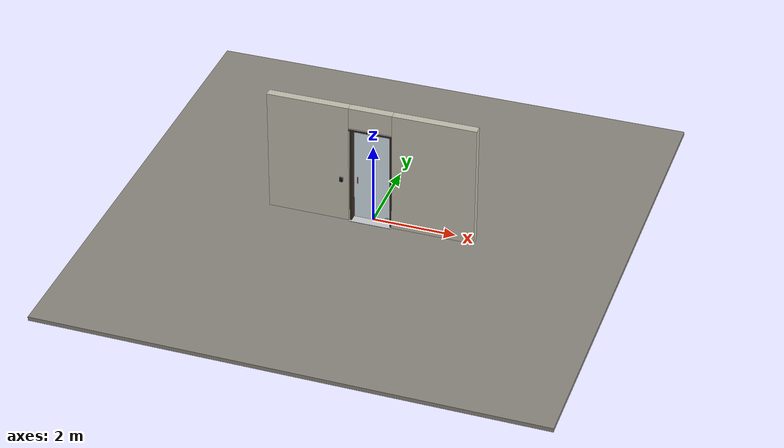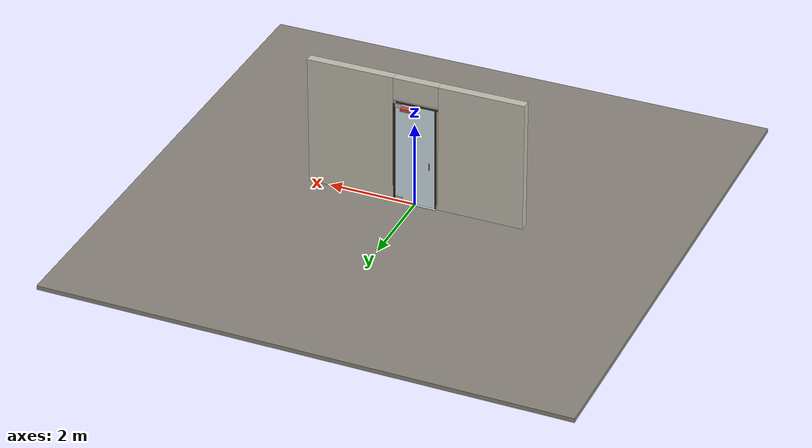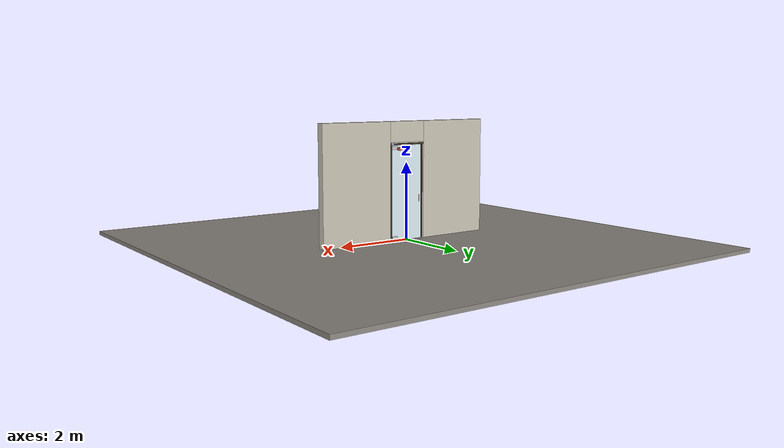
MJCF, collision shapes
<?xml version="1.0" ?>
<mujoco model="db0152_swing_single_simple">
  <compiler angle="radian" meshdir="../../hardware" texturedir="../../textures" autolimits="true" inertiafromgeom="false"/>
  <option timestep="0.002" integrator="implicitfast" cone="elliptic" impratio="10" noslip_iterations="3">
    <flag multiccd="enable"/>
  </option>
  <size memory="16M"/>
  <default>
    <geom condim="4" solref="0.005 1" solimp="0.95 0.99 0.001"/>
    <joint solreflimit="0.005 1" solimplimit="0.95 0.99 0.001"/>
    <tendon solreflimit="0.005 1"/>
    <equality solref="0.002 1"/>
  </default>
  <visual>
    <headlight ambient="0.4 0.4 0.4" diffuse="0.7 0.7 0.7" specular="0.2 0.2 0.2"/>
    <quality shadowsize="4096"/>
    <map znear="0.01" zfar="60"/>
  </visual>
  <asset>
    <mesh name="closer_body_fdc4667657" file="closer_body_fdc4667657.obj"/>
    <mesh name="pull_1e5d69a91a" file="pull_1e5d69a91a.obj"/>
    <material name="mat_floor" rgba="0.55 0.53 0.5 1" specular="0.2" shininess="0.15" reflectance="0"/>
    <material name="mat_wall" rgba="0.78 0.76 0.7 1" specular="0.2" shininess="0.1" reflectance="0"/>
    <material name="mat_leaf" rgba="0.85 0.92 0.95 0.25" specular="0.2" shininess="0.95" reflectance="0.1"/>
    <material name="mat_glass_leaf" rgba="0.85 0.92 0.95 0.25" specular="0.2" shininess="0.95" reflectance="0.1"/>
    <material name="mat_patch" rgba="0.75 0.76 0.77 1" specular="0.8" shininess="0.65" reflectance="0.4"/>
    <material name="mat_hinge" rgba="0.65 0.66 0.68 1" specular="0.74" shininess="0.5" reflectance="0.36"/>
    <material name="mat_op_stainless" rgba="0.75 0.76 0.77 1" specular="0.8" shininess="0.65" reflectance="0.4"/>
    <material name="mat_frame" rgba="0.22 0.17 0.13 1" specular="0.8" shininess="0.6" reflectance="0.4"/>
    <material name="mat_threshold" rgba="0.8 0.81 0.83 1" specular="0.8" shininess="0.6" reflectance="0.4"/>
    <material name="mat_closer" rgba="0.22 0.17 0.13 1" specular="0.8" shininess="0.6" reflectance="0.4"/>
    <material name="mat_sign" rgba="0.75 0.76 0.77 1" specular="0.8" shininess="0.65" reflectance="0.4"/>
    <material name="mat_wallreader" rgba="0.05 0.05 0.05 1" specular="0.38" shininess="0.3" reflectance="0.12"/>
    <texture name="skybox" type="skybox" builtin="gradient" rgb1="0.6 0.7 0.85" rgb2="0.9 0.92 0.95" width="256" height="256"/>
  </asset>
  <worldbody>
    <light name="sun" pos="1.5 -2.5 4" dir="-0.3 0.5 -0.8" directional="true" diffuse="0.8 0.8 0.8" specular="0.3 0.3 0.3" castshadow="true"/>
    <light name="fill" pos="-1.5 2.5 3" dir="0.3 -0.5 -0.7" directional="true" diffuse="0.35 0.35 0.4" castshadow="false"/>
    <camera name="robot_view" pos="0 -3.010813 2.043887" xyaxes="1 0 0 0 0.26963 0.962964" fovy="52"/>
    <camera name="far_view" pos="0 2.834812 2.043887" xyaxes="-1 0 0 0 -0.26963 0.962964" fovy="52"/>
    <camera name="iso" pos="-2.221337 -2.543163 2.511538" xyaxes="0.741536 -0.670913 0 0.242917 0.268487 0.932151" fovy="46"/>
    <camera name="detail_handle" pos="-0.1735 -0.865 1.347" xyaxes="0.97561 0.219512 0 -0.070934 0.315262 0.94635" fovy="38"/>
    <geom name="floor" type="box" size="6 6 0.05" pos="0 0 -0.05" material="mat_floor" group="0" contype="1" conaffinity="1" friction="0.8 0.005 0.0001" density="2400"/>
    <geom name="wall_left" type="box" size="0.98175 0.1 1.5255" pos="-1.51825 -0.088 1.5255" material="mat_wall" group="0" contype="1" conaffinity="1" friction="0.6 0.005 0.0001" density="800"/>
    <geom name="wall_right" type="box" size="0.99675 0.1 1.5255" pos="1.50325 -0.088 1.5255" material="mat_wall" group="0" contype="1" conaffinity="1" friction="0.6 0.005 0.0001" density="800"/>
    <geom name="wall_header" type="box" size="0.5215 0.1 0.2625" pos="-0.015 -0.088 2.7885" material="mat_wall" group="0" contype="1" conaffinity="1" friction="0.6 0.005 0.0001" density="800"/>
    <geom name="pivot_bottom_socket" type="box" size="0.035 0.035 0.0085" pos="0.4585 0.012 -0.0015" material="mat_hinge" group="1" contype="0" conaffinity="0" density="7850"/>
    <geom name="pivot_top_bracket" type="box" size="0.035 0.035 0.0355" pos="0.4585 0.012 2.4905" material="mat_hinge" group="1" contype="0" conaffinity="0" density="7850"/>
    <geom name="jamb_hinge" type="box" size="0.0225 0.1 1.2255" pos="0.484 -0.088 1.2255" material="mat_frame" group="0" contype="1" conaffinity="1" friction="0.6 0.005 0.0001" density="300"/>
    <geom name="jamb_strike" type="box" size="0.0225 0.1 1.2255" pos="-0.484 -0.088 1.2255" material="mat_frame" group="0" contype="1" conaffinity="1" friction="0.6 0.005 0.0001" density="300"/>
    <geom name="stud_strike" type="box" size="0.015 0.1 1.2255" pos="-0.5215 -0.088 1.2255" material="mat_wall" group="0" contype="1" conaffinity="1" friction="0.6 0.005 0.0001" density="500"/>
    <geom name="jamb_head" type="box" size="0.5215 0.1 0.0225" pos="-0.015 -0.088 2.4735" material="mat_frame" group="0" contype="1" conaffinity="1" friction="0.6 0.005 0.0001" density="300"/>
    <geom name="head_stud" type="box" size="0.5215 0.1 0.015" pos="-0.015 -0.088 2.511" material="mat_wall" group="0" contype="1" conaffinity="1" friction="0.6 0.005 0.0001" density="500"/>
    <geom name="threshold" type="box" size="0.5065 0.15 0.004" pos="0 -0.088 0.004" material="mat_threshold" group="0" contype="1" conaffinity="1" friction="0.6 0.005 0.0001" density="2700"/>
    <geom name="wall_reader" type="box" size="0.04 0.015 0.06" pos="-0.7115 -0.203 1.1" material="mat_wallreader" group="0" contype="1" conaffinity="1" friction="0.6 0.005 0.0001" density="1000"/>
    <site name="approach_point" pos="0 -1.5 0" quat="1 0 0 0" size="0.05" rgba="0.2 0.9 0.2 0.5" group="4"/>
    <site name="goal_point" pos="0 1.5 0" quat="1 0 0 0" size="0.05" rgba="0.2 0.9 0.2 0.5" group="4"/>
    <site name="door_plane_center" pos="0 0 1.2255" quat="1 0 0 0" size="0.02" rgba="0.2 0.9 0.2 0.5" group="4"/>
    <body name="leaf" pos="0.4615 0 0">
      <inertial pos="-0.349964 0.043955 2.123187" mass="72.245386" quat="0.538686 -0.545357 -0.467109 -0.440694" diaginertia="1.65971287 22.114385938 23.636792355"/>
      <joint name="leaf_hinge" type="hinge" axis="0 0 -1" pos="-0.003 0.012 0" limited="true" range="0 1.745329" solreflimit="0.02 1" damping="12.307281" frictionloss="1.382681" stiffness="15.673579" springref="-1.79155" armature="0.02"/>
      <geom name="leaf_glass" type="box" size="0.457 0.005 1.219" pos="-0.463 0 1.228" material="mat_glass_leaf" group="0" contype="1" conaffinity="1" friction="0.4 0.005 0.0001" density="1"/>
      <geom name="leaf_patch_bot" type="box" size="0.08 0.013 0.05" pos="-0.086 0 0.069" material="mat_patch" group="1" contype="0" conaffinity="0" density="1"/>
      <geom name="leaf_patch_top" type="box" size="0.08 0.013 0.05" pos="-0.086 0 2.387" material="mat_patch" group="1" contype="0" conaffinity="0" density="1"/>
      <geom name="leaf_pull_n" type="mesh" mesh="pull_1e5d69a91a" pos="-0.815 -0.005 1.067" quat="0 0 -0.707107 0.707107" material="mat_op_stainless" group="1" contype="0" conaffinity="0" density="3000"/>
      <geom name="leaf_pull_col_n" type="capsule" size="0.0095 0.08" pos="-0.815 -0.065 1.067" material="mat_op_stainless" group="3" contype="1" conaffinity="1" rgba="0.8 0.3 0.3 0.25" friction="0.7 0.01 0.0001" density="3000"/>
      <geom name="leaf_pull_p" type="mesh" mesh="pull_1e5d69a91a" pos="-0.815 0.005 1.067" quat="0 0 0.707107 0.707107" material="mat_op_stainless" group="1" contype="0" conaffinity="0" density="3000"/>
      <geom name="leaf_pull_col_p" type="capsule" size="0.0095 0.08" pos="-0.815 0.065 1.067" material="mat_op_stainless" group="3" contype="1" conaffinity="1" rgba="0.8 0.3 0.3 0.25" friction="0.7 0.01 0.0001" density="3000"/>
      <geom name="closer_body" type="mesh" mesh="closer_body_fdc4667657" pos="-0.3 0.005 2.358" quat="0 0 0.707107 0.707107" material="mat_closer" group="1" contype="0" conaffinity="0" density="2000"/>
      <geom name="closer_body_col" type="box" size="0.145 0.05 0.035" pos="-0.3 0.055 2.358" material="mat_closer" group="3" contype="1" conaffinity="1" rgba="0.8 0.3 0.3 0.25" friction="0.6 0.005 0.0001" density="2000"/>
      <site name="leaf_pull_grip_n" pos="-0.815 -0.065 1.067" quat="1 0 0 0" size="0.012" rgba="0.2 0.9 0.2 0.5" group="4"/>
      <site name="leaf_pull_grip_p" pos="-0.815 0.065 1.067" quat="1 0 0 0" size="0.012" rgba="0.2 0.9 0.2 0.5" group="4"/>
      <site name="leaf_edge_mid" pos="-0.92 0 1.219" quat="1 0 0 0" size="0.02" rgba="0.2 0.9 0.2 0.5" group="4"/>
    </body>
  </worldbody>
  <sensor>
    <jointpos name="leaf_hinge_pos" joint="leaf_hinge"/>
    <jointvel name="leaf_hinge_vel" joint="leaf_hinge"/>
  </sensor>
</mujoco>
